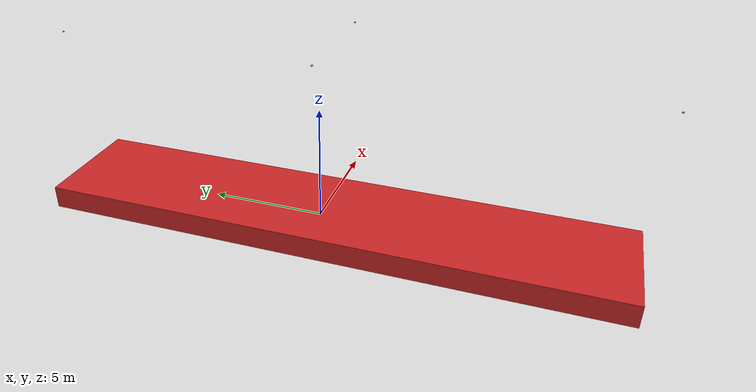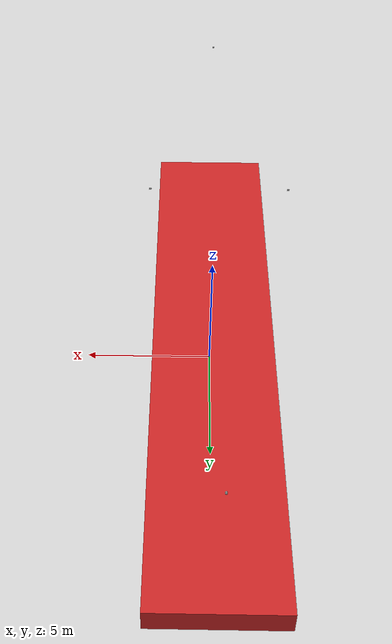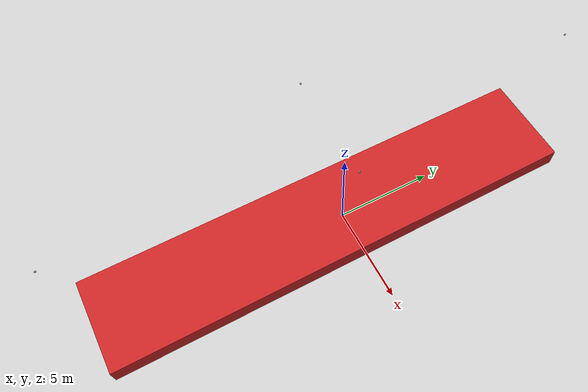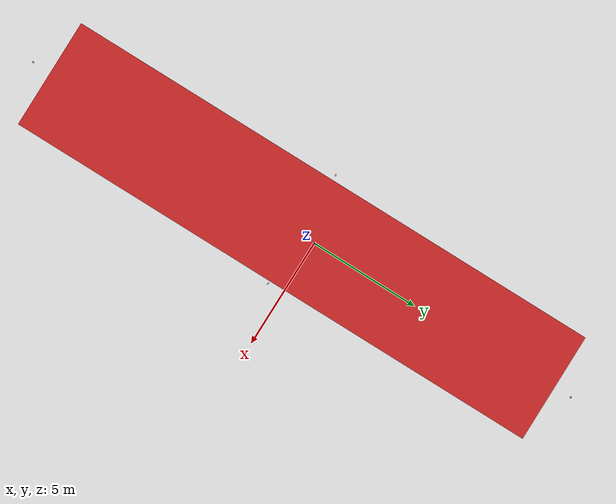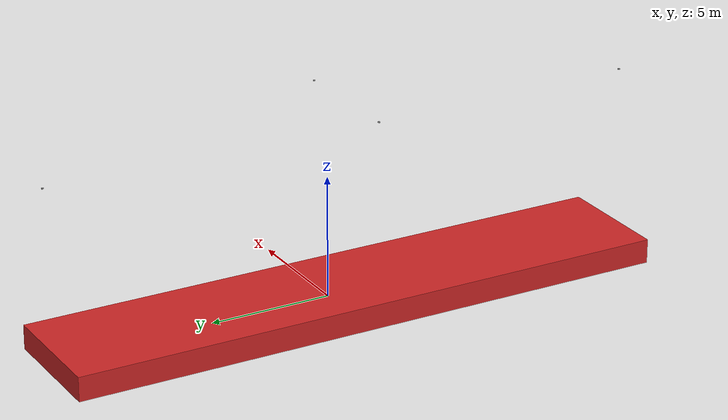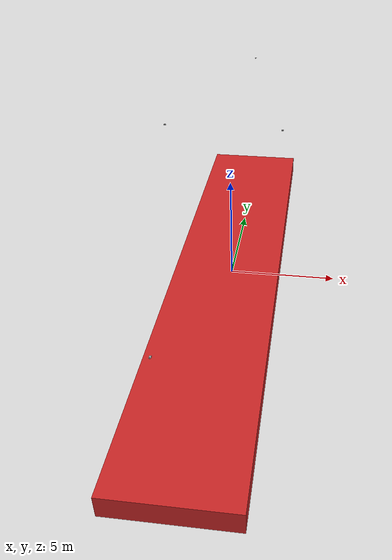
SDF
<sdf version="1.6">
 <world name="default">
  <model name="ground_plane">
   <pose>0 0 -333 0 -0 0</pose>
   <static>1</static>
   <link name="link">
    <collision name="collision">
     <geometry><plane><normal>0 0 1</normal><size>100 100</size></plane></geometry>
     <surface><friction><ode><mu>100</mu><mu2>50</mu2></ode></friction></surface>
    </collision>
    <visual name="visual">
     <cast_shadows>0</cast_shadows>
     <geometry><plane><normal>0 0 1</normal><size>100 100</size></plane></geometry>
     <material>
      <script><uri>file://media/materials/scripts/gazebo.material</uri><name>Gazebo/Grey</name></script>
     </material>
    </visual>
    <enable_wind>1</enable_wind>
   </link>
   <enable_wind>1</enable_wind>
  </model>
  <model name="robot_description">
   <link name="base_link">
    <inertial>
     <pose>0 0 5e-06 0 -0 0</pose>
     <mass>125</mass>
     <inertia><ixx>6520.01</ixx><ixy>0</ixy><ixz>0</ixz><iyy>6770</iyy><iyz>0</iyz><izz>270.007</izz></inertia>
    </inertial>
    <collision name="base_link_collision"><geometry><box><size>5.1 25.1 0.1</size></box></geometry></collision>
    <collision name="base_link_fixed_joint_lump__camera_link_1_collision_1">
     <pose>0 12.5 7 0 -0 2.01</pose>
     <geometry><box><size>0.08 0.04 0.04</size></box></geometry>
    </collision>
    <collision name="base_link_fixed_joint_lump__camera_link_2_collision_2">
     <pose>0 12.5 7 0 -0 1.13</pose>
     <geometry><box><size>0.08 0.04 0.04</size></box></geometry>
    </collision>
    <collision name="base_link_fixed_joint_lump__camera_link_3_collision_3">
     <pose>0 -12.5 7 0 0 -1.13</pose>
     <geometry><box><size>0.08 0.04 0.04</size></box></geometry>
    </collision>
    <collision name="base_link_fixed_joint_lump__camera_link_4_collision_4">
     <pose>0 -12.5 7 0 0 -2.01</pose>
     <geometry><box><size>0.08 0.04 0.04</size></box></geometry>
    </collision>
    <collision name="base_link_fixed_joint_lump__camera_link_5_collision_5">
     <pose>2.5 0 8 0 -0 0.44</pose>
     <geometry><box><size>0.08 0.04 0.04</size></box></geometry>
    </collision>
    <collision name="base_link_fixed_joint_lump__camera_link_6_collision_6">
     <pose>2.5 0 8 0 0 -0.44</pose>
     <geometry><box><size>0.08 0.04 0.04</size></box></geometry>
    </collision>
    <collision name="base_link_fixed_joint_lump__camera_link_7_collision_7">
     <pose>-2.5 0 8 0 -0 -2.70319</pose>
     <geometry><box><size>0.08 0.04 0.04</size></box></geometry>
    </collision>
    <collision name="base_link_fixed_joint_lump__camera_link_8_collision_8">
     <pose>-2.5 0 8 0 -0 2.7</pose>
     <geometry><box><size>0.08 0.04 0.04</size></box></geometry>
    </collision>
    <visual name="base_link_visual">
     <geometry><box><size>5 25 1</size></box></geometry>
     <material>
      <script><name>Gazebo/Red</name><uri>file://media/materials/scripts/gazebo.material</uri></script>
     </material>
    </visual>
    <visual name="base_link_fixed_joint_lump__camera_link_1_visual_1">
     <pose>0 12.5 7 0 -0 2.01</pose>
     <geometry><box><size>0.08 0.04 0.04</size></box></geometry>
     <material><script><uri>__default__</uri><name>__default__</name></script></material>
    </visual>
    <visual name="base_link_fixed_joint_lump__camera_link_2_visual_2">
     <pose>0 12.5 7 0 -0 1.13</pose>
     <geometry><box><size>0.08 0.04 0.04</size></box></geometry>
     <material><script><uri>__default__</uri><name>__default__</name></script></material>
    </visual>
    <visual name="base_link_fixed_joint_lump__camera_link_3_visual_3">
     <pose>0 -12.5 7 0 0 -1.13</pose>
     <geometry><box><size>0.08 0.04 0.04</size></box></geometry>
     <material><script><uri>__default__</uri><name>__default__</name></script></material>
    </visual>
    <visual name="base_link_fixed_joint_lump__camera_link_4_visual_4">
     <pose>0 -12.5 7 0 0 -2.01</pose>
     <geometry><box><size>0.08 0.04 0.04</size></box></geometry>
     <material><script><uri>__default__</uri><name>__default__</name></script></material>
    </visual>
    <visual name="base_link_fixed_joint_lump__camera_link_5_visual_5">
     <pose>2.5 0 8 0 -0 0.44</pose>
     <geometry><box><size>0.08 0.04 0.04</size></box></geometry>
     <material><script><uri>__default__</uri><name>__default__</name></script></material>
    </visual>
    <visual name="base_link_fixed_joint_lump__camera_link_6_visual_6">
     <pose>2.5 0 8 0 0 -0.44</pose>
     <geometry><box><size>0.08 0.04 0.04</size></box></geometry>
     <material><script><uri>__default__</uri><name>__default__</name></script></material>
    </visual>
    <visual name="base_link_fixed_joint_lump__camera_link_7_visual_7">
     <pose>-2.5 0 8 0 -0 -2.70319</pose>
     <geometry><box><size>0.08 0.04 0.04</size></box></geometry>
     <material><script><uri>__default__</uri><name>__default__</name></script></material>
    </visual>
    <visual name="base_link_fixed_joint_lump__camera_link_8_visual_8">
     <pose>-2.5 0 8 0 -0 2.7</pose>
     <geometry><box><size>0.08 0.04 0.04</size></box></geometry>
     <material><script><uri>__default__</uri><name>__default__</name></script></material>
    </visual>
    <sensor name="camera_1" type="camera">
     <update_rate>20</update_rate>
     <camera name="head">
      <horizontal_fov>1.22</horizontal_fov>
      <image><width>1920</width><height>1080</height><format>R8G8B8</format></image>
      <clip><near>0.02</near><far>300</far></clip>
      <noise><type>gaussian</type><mean>0</mean><stddev>0.007</stddev></noise>
     </camera>
     <plugin name="camera_controller" filename="libgazebo_ros_camera.so">
      <alwaysOn>1</alwaysOn>
      <updateRate>0.0</updateRate>
      <cameraName>camera_1</cameraName>
      <imageTopicName>camera_1_raw</imageTopicName>
      <cameraInfoTopicName>camera_1_info</cameraInfoTopicName>
      <frameName>camera_link_1</frameName>
      <hackBaseline>0.07</hackBaseline>
      <distortionK1>0.0</distortionK1>
      <distortionK2>0.0</distortionK2>
      <distortionK3>0.0</distortionK3>
      <distortionT1>0.0</distortionT1>
      <distortionT2>0.0</distortionT2>
      <robotNamespace>/</robotNamespace>
     </plugin>
     <pose>0 12.5 7 0 -0 2.01</pose>
    </sensor>
    <sensor name="camera_2" type="camera">
     <update_rate>20</update_rate>
     <camera name="head">
      <horizontal_fov>1.22</horizontal_fov>
      <image><width>1920</width><height>1080</height><format>R8G8B8</format></image>
      <clip><near>0.02</near><far>300</far></clip>
      <noise><type>gaussian</type><mean>0</mean><stddev>0.007</stddev></noise>
     </camera>
     <plugin name="camera_controller" filename="libgazebo_ros_camera.so">
      <alwaysOn>1</alwaysOn>
      <updateRate>0.0</updateRate>
      <cameraName>camera_2</cameraName>
      <imageTopicName>camera_2_raw</imageTopicName>
      <cameraInfoTopicName>camera_2_info</cameraInfoTopicName>
      <frameName>camera_link_2</frameName>
      <hackBaseline>0.07</hackBaseline>
      <distortionK1>0.0</distortionK1>
      <distortionK2>0.0</distortionK2>
      <distortionK3>0.0</distortionK3>
      <distortionT1>0.0</distortionT1>
      <distortionT2>0.0</distortionT2>
      <robotNamespace>/</robotNamespace>
     </plugin>
     <pose>0 12.5 7 0 -0 1.13</pose>
    </sensor>
    <sensor name="camera_3" type="camera">
     <update_rate>20</update_rate>
     <camera name="head">
      <horizontal_fov>1.22</horizontal_fov>
      <image><width>1920</width><height>1080</height><format>R8G8B8</format></image>
      <clip><near>0.02</near><far>300</far></clip>
      <noise><type>gaussian</type><mean>0</mean><stddev>0.007</stddev></noise>
     </camera>
     <plugin name="camera_controller" filename="libgazebo_ros_camera.so">
      <alwaysOn>1</alwaysOn>
      <updateRate>0.0</updateRate>
      <cameraName>camera_3</cameraName>
      <imageTopicName>camera_3_raw</imageTopicName>
      <cameraInfoTopicName>camera_3_info</cameraInfoTopicName>
      <frameName>camera_link_3</frameName>
      <hackBaseline>0.07</hackBaseline>
      <distortionK1>0.0</distortionK1>
      <distortionK2>0.0</distortionK2>
      <distortionK3>0.0</distortionK3>
      <distortionT1>0.0</distortionT1>
      <distortionT2>0.0</distortionT2>
      <robotNamespace>/</robotNamespace>
     </plugin>
     <pose>0 -12.5 7 0 0 -1.13</pose>
    </sensor>
    <sensor name="camera_4" type="camera">
     <update_rate>20</update_rate>
     <camera name="head">
      <horizontal_fov>1.22</horizontal_fov>
      <image><width>1920</width><height>1080</height><format>R8G8B8</format></image>
      <clip><near>0.02</near><far>300</far></clip>
      <noise><type>gaussian</type><mean>0</mean><stddev>0.007</stddev></noise>
     </camera>
     <plugin name="camera_controller" filename="libgazebo_ros_camera.so">
      <alwaysOn>1</alwaysOn>
      <updateRate>0.0</updateRate>
      <cameraName>camera_4</cameraName>
      <imageTopicName>camera_4_raw</imageTopicName>
      <cameraInfoTopicName>camera_4_info</cameraInfoTopicName>
      <frameName>camera_link_4</frameName>
      <hackBaseline>0.07</hackBaseline>
      <distortionK1>0.0</distortionK1>
      <distortionK2>0.0</distortionK2>
      <distortionK3>0.0</distortionK3>
      <distortionT1>0.0</distortionT1>
      <distortionT2>0.0</distortionT2>
      <robotNamespace>/</robotNamespace>
     </plugin>
     <pose>0 -12.5 7 0 0 -2.01</pose>
    </sensor>
    <sensor name="camera_5" type="camera">
     <update_rate>20</update_rate>
     <camera name="head">
      <horizontal_fov>1.22</horizontal_fov>
      <image><width>1920</width><height>1080</height><format>R8G8B8</format></image>
      <clip><near>0.02</near><far>300</far></clip>
      <noise><type>gaussian</type><mean>0</mean><stddev>0.007</stddev></noise>
     </camera>
     <plugin name="camera_controller" filename="libgazebo_ros_camera.so">
      <alwaysOn>1</alwaysOn>
      <updateRate>0.0</updateRate>
      <cameraName>camera_5</cameraName>
      <imageTopicName>camera_5_raw</imageTopicName>
      <cameraInfoTopicName>camera_5_info</cameraInfoTopicName>
      <frameName>camera_link_5</frameName>
      <hackBaseline>0.07</hackBaseline>
      <distortionK1>0.0</distortionK1>
      <distortionK2>0.0</distortionK2>
      <distortionK3>0.0</distortionK3>
      <distortionT1>0.0</distortionT1>
      <distortionT2>0.0</distortionT2>
      <robotNamespace>/</robotNamespace>
     </plugin>
     <pose>2.5 0 8 0 -0 0.44</pose>
    </sensor>
    <sensor name="camera_6" type="camera">
     <update_rate>20</update_rate>
     <camera name="head">
      <horizontal_fov>1.22</horizontal_fov>
      <image><width>1920</width><height>1080</height><format>R8G8B8</format></image>
      <clip><near>0.02</near><far>300</far></clip>
      <noise><type>gaussian</type><mean>0</mean><stddev>0.007</stddev></noise>
     </camera>
     <plugin name="camera_controller" filename="libgazebo_ros_camera.so">
      <alwaysOn>1</alwaysOn>
      <updateRate>0.0</updateRate>
      <cameraName>camera_6</cameraName>
      <imageTopicName>camera_6_raw</imageTopicName>
      <cameraInfoTopicName>camera_6_info</cameraInfoTopicName>
      <frameName>camera_link_6</frameName>
      <hackBaseline>0.07</hackBaseline>
      <distortionK1>0.0</distortionK1>
      <distortionK2>0.0</distortionK2>
      <distortionK3>0.0</distortionK3>
      <distortionT1>0.0</distortionT1>
      <distortionT2>0.0</distortionT2>
      <robotNamespace>/</robotNamespace>
     </plugin>
     <pose>2.5 0 8 0 0 -0.44</pose>
    </sensor>
    <sensor name="camera_7" type="camera">
     <update_rate>20</update_rate>
     <camera name="head">
      <horizontal_fov>1.22</horizontal_fov>
      <image><width>1920</width><height>1080</height><format>R8G8B8</format></image>
      <clip><near>0.02</near><far>300</far></clip>
      <noise><type>gaussian</type><mean>0</mean><stddev>0.007</stddev></noise>
     </camera>
     <plugin name="camera_controller" filename="libgazebo_ros_camera.so">
      <alwaysOn>1</alwaysOn>
      <updateRate>0.0</updateRate>
      <cameraName>camera_7</cameraName>
      <imageTopicName>camera_7_raw</imageTopicName>
      <cameraInfoTopicName>camera_7_info</cameraInfoTopicName>
      <frameName>camera_link_7</frameName>
      <hackBaseline>0.07</hackBaseline>
      <distortionK1>0.0</distortionK1>
      <distortionK2>0.0</distortionK2>
      <distortionK3>0.0</distortionK3>
      <distortionT1>0.0</distortionT1>
      <distortionT2>0.0</distortionT2>
      <robotNamespace>/</robotNamespace>
     </plugin>
     <pose>-2.5 0 8 0 -0 -2.70319</pose>
    </sensor>
    <sensor name="camera_8" type="camera">
     <update_rate>20</update_rate>
     <camera name="head">
      <horizontal_fov>1.22</horizontal_fov>
      <image><width>1920</width><height>1080</height><format>R8G8B8</format></image>
      <clip><near>0.02</near><far>300</far></clip>
      <noise><type>gaussian</type><mean>0</mean><stddev>0.007</stddev></noise>
     </camera>
     <plugin name="camera_controller" filename="libgazebo_ros_camera.so">
      <alwaysOn>1</alwaysOn>
      <updateRate>0.0</updateRate>
      <cameraName>camera_8</cameraName>
      <imageTopicName>camera_8_raw</imageTopicName>
      <cameraInfoTopicName>camera_8_info</cameraInfoTopicName>
      <frameName>camera_link_8</frameName>
      <hackBaseline>0.07</hackBaseline>
      <distortionK1>0.0</distortionK1>
      <distortionK2>0.0</distortionK2>
      <distortionK3>0.0</distortionK3>
      <distortionT1>0.0</distortionT1>
      <distortionT2>0.0</distortionT2>
      <robotNamespace>/</robotNamespace>
     </plugin>
     <pose>-2.5 0 8 0 -0 2.7</pose>
    </sensor>
   </link>
   <static>0</static>
   <plugin name="ground_truth_odometry" filename="libgazebo_ros_p3d.so">
    <alwaysOn>1</alwaysOn>
    <updateRate>100.0</updateRate>
    <bodyName>base_link</bodyName>
    <topicName>base_pose_ground_truth</topicName>
    <gaussianNoise>0.5</gaussianNoise>
    <frameName>map</frameName>
    <xyzOffsets>0 0 0</xyzOffsets>
    <rpyOffsets>0 0 0</rpyOffsets>
    <robotNamespace>/</robotNamespace>
   </plugin>
   <pose>-0.156275 -0.725161 0.05 0 -0 0.003976</pose>
  </model>
 </world>
</sdf>
